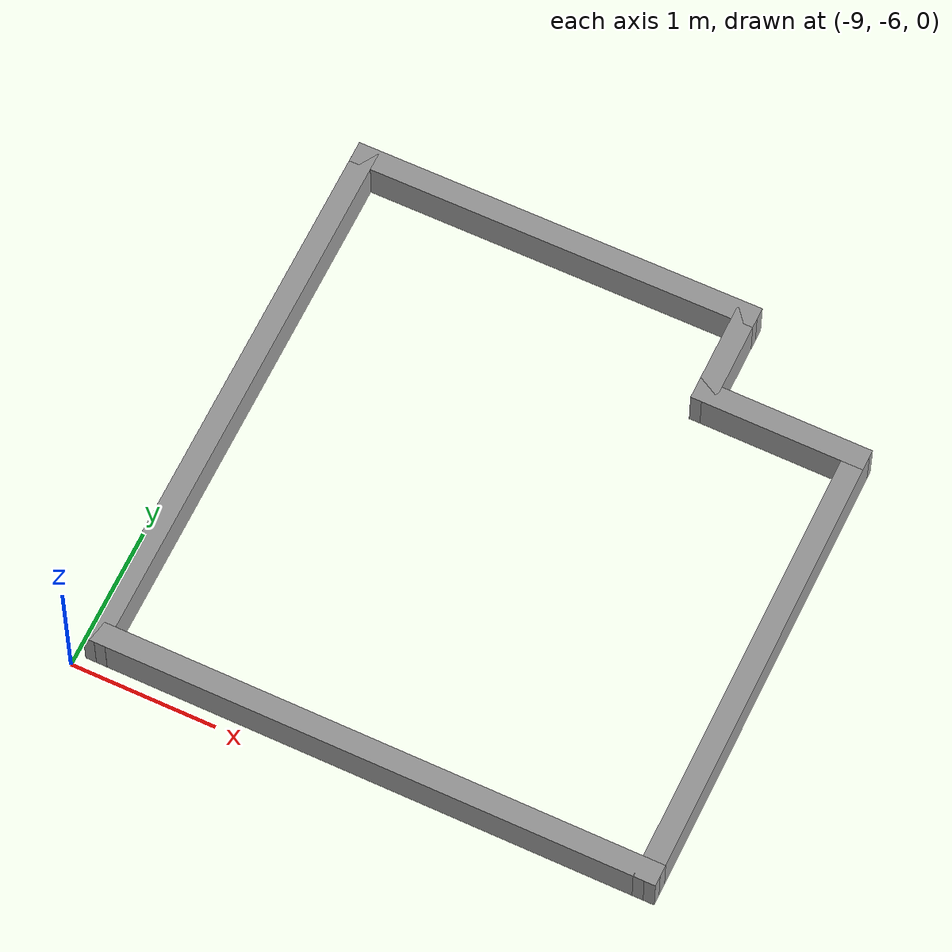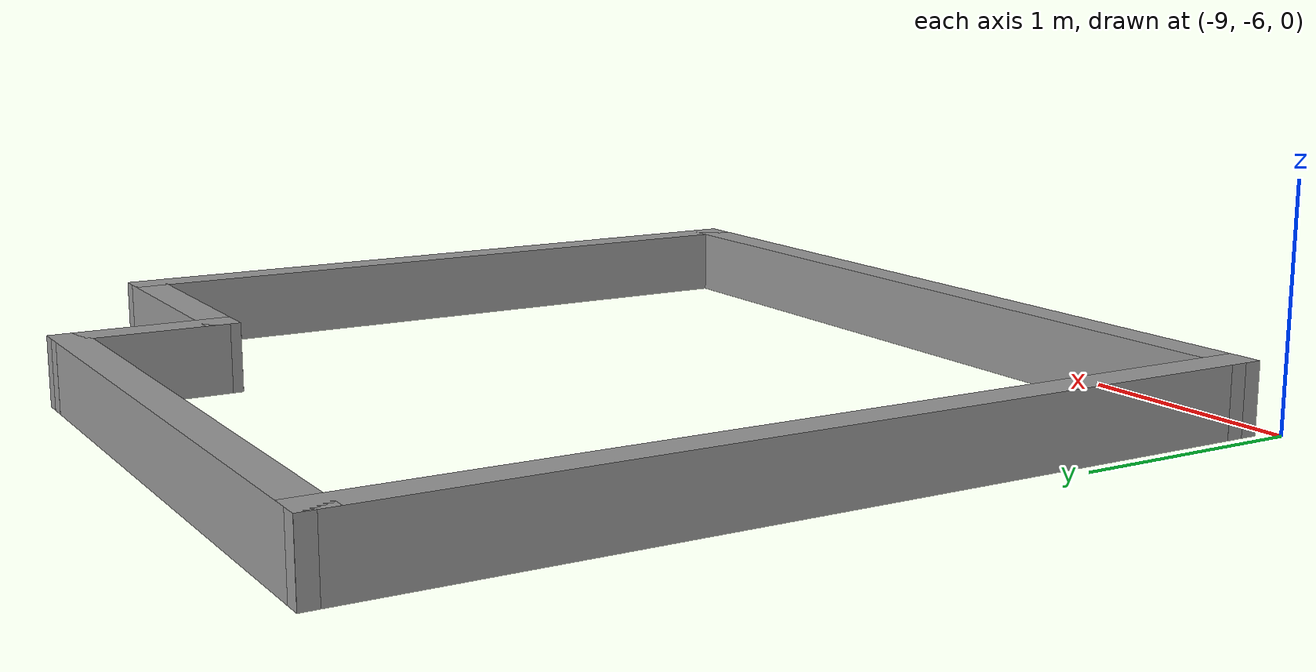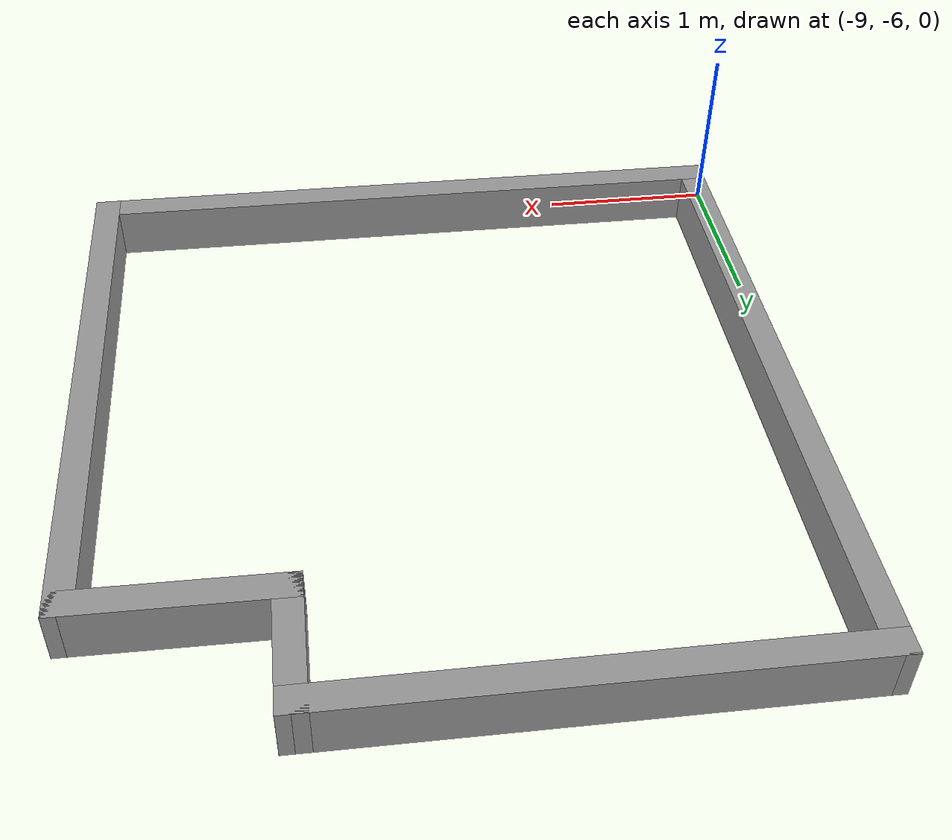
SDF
<?xml version='1.0'?>
<sdf version='1.6'>
  <model name='GazeboMapADEYE'>
    <pose frame=''>-6.9921 -3.96558 0 0 -0 0</pose>
    <link name='Wall_25'>
      <collision name='Wall_25_Collision'>
        <geometry>
          <box>
            <size>3.9 0.15 0.3</size>
          </box>
        </geometry>
        <pose frame=''>0 0 0.15 0 -0 0</pose>
      </collision>
      <visual name='Wall_25_Visual'>
        <pose frame=''>0 0 0.15 0 -0 0</pose>
        <geometry>
          <box>
            <size>3.9 0.15 0.3</size>
          </box>
        </geometry>
        <material>
          <script>
            <uri>file://media/materials/scripts/gazebo.material</uri>
            <name>Gazebo/Grey</name>
          </script>
          <ambient>1 1 1 1</ambient>
        </material>
      </visual>
      <pose frame=''>-1.86741 -0.002436 0 0 -0 1.5668</pose>
    </link>
    <link name='Wall_27'>
      <collision name='Wall_27_Collision'>
        <geometry>
          <box>
            <size>3.9 0.15 0.3</size>
          </box>
        </geometry>
        <pose frame=''>0 0 0.15 0 -0 0</pose>
      </collision>
      <visual name='Wall_27_Visual'>
        <pose frame=''>0 0 0.15 0 -0 0</pose>
        <geometry>
          <box>
            <size>3.9 0.15 0.3</size>
          </box>
        </geometry>
        <material>
          <script>
            <uri>file://media/materials/scripts/gazebo.material</uri>
            <name>Gazebo/Grey</name>
          </script>
          <ambient>1 1 1 1</ambient>
        </material>
      </visual>
      <pose frame=''>0.000101 -1.87742 0 0 -0 0</pose>
    </link>
    <link name='Wall_29'>
      <collision name='Wall_29_Collision'>
        <geometry>
          <box>
            <size>2.84 0.15 0.3</size>
          </box>
        </geometry>
        <pose frame=''>0 0 0.15 0 -0 0</pose>
      </collision>
      <visual name='Wall_29_Visual'>
        <pose frame=''>0 0 0.15 0 -0 0</pose>
        <geometry>
          <box>
            <size>2.84 0.15 0.3</size>
          </box>
        </geometry>
        <material>
          <script>
            <uri>file://media/materials/scripts/gazebo.material</uri>
            <name>Gazebo/Grey</name>
          </script>
          <ambient>1 1 1 1</ambient>
        </material>
      </visual>
      <pose frame=''>-0.514909 1.87506 0 0 -0 0.00187</pose>
    </link>
    <link name='Wall_31'>
      <collision name='Wall_31_Collision'>
        <geometry>
          <box>
            <size>3.28 0.15 0.3</size>
          </box>
        </geometry>
        <pose frame=''>0 0 0.15 0 -0 0</pose>
      </collision>
      <visual name='Wall_31_Visual'>
        <pose frame=''>0 0 0.15 0 -0 0</pose>
        <geometry>
          <box>
            <size>3.28 0.15 0.3</size>
          </box>
        </geometry>
        <material>
          <script>
            <uri>file://media/materials/scripts/gazebo.material</uri>
            <name>Gazebo/Grey</name>
          </script>
          <ambient>1 1 1 1</ambient>
        </material>
      </visual>
      <pose frame=''>1.8731 -0.312421 0 0 -0 1.57207</pose>
    </link>
    <link name='Wall_51'>
      <collision name='Wall_51_Collision'>
        <geometry>
          <box>
            <size>0.77 0.15 0.3</size>
          </box>
        </geometry>
        <pose frame=''>0 0 0.15 0 -0 0</pose>
      </collision>
      <visual name='Wall_51_Visual'>
        <pose frame=''>0 0 0.15 0 -0 0</pose>
        <geometry>
          <box>
            <size>0.77 0.15 0.3</size>
          </box>
        </geometry>
        <material>
          <script>
            <uri>file://media/materials/scripts/gazebo.material</uri>
            <name>Gazebo/Grey</name>
          </script>
          <ambient>1 1 1 1</ambient>
        </material>
      </visual>
      <pose frame=''>0.830101 1.56758 0 0 0 -1.5708</pose>
    </link>
    <link name='Wall_54'>
      <collision name='Wall_54_Collision'>
        <geometry>
          <box>
            <size>1.19073 0.15 0.3</size>
          </box>
        </geometry>
        <pose frame=''>0 0 0.15 0 -0 0</pose>
      </collision>
      <visual name='Wall_54_Visual'>
        <pose frame=''>0 0 0.15 0 -0 0</pose>
        <geometry>
          <box>
            <size>1.19073 0.15 0.3</size>
          </box>
        </geometry>
        <material>
          <script>
            <uri>file://media/materials/scripts/gazebo.material</uri>
            <name>Gazebo/Grey</name>
          </script>
          <ambient>1 1 1 1</ambient>
        </material>
      </visual>
      <pose frame=''>1.3506 1.25508 0 0 0 -0.004803</pose>
    </link>
    <static>1</static>
  </model>
</sdf>
